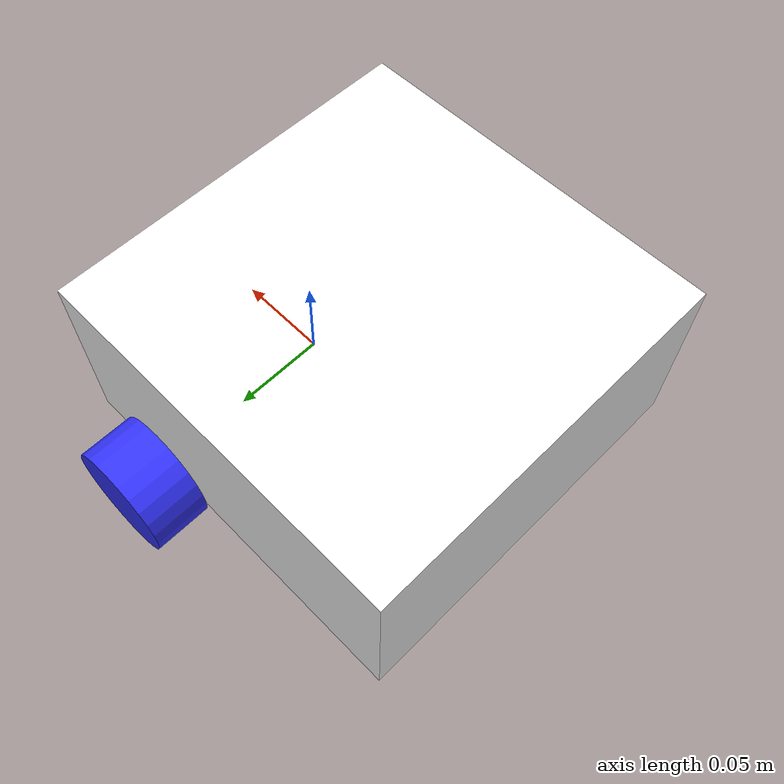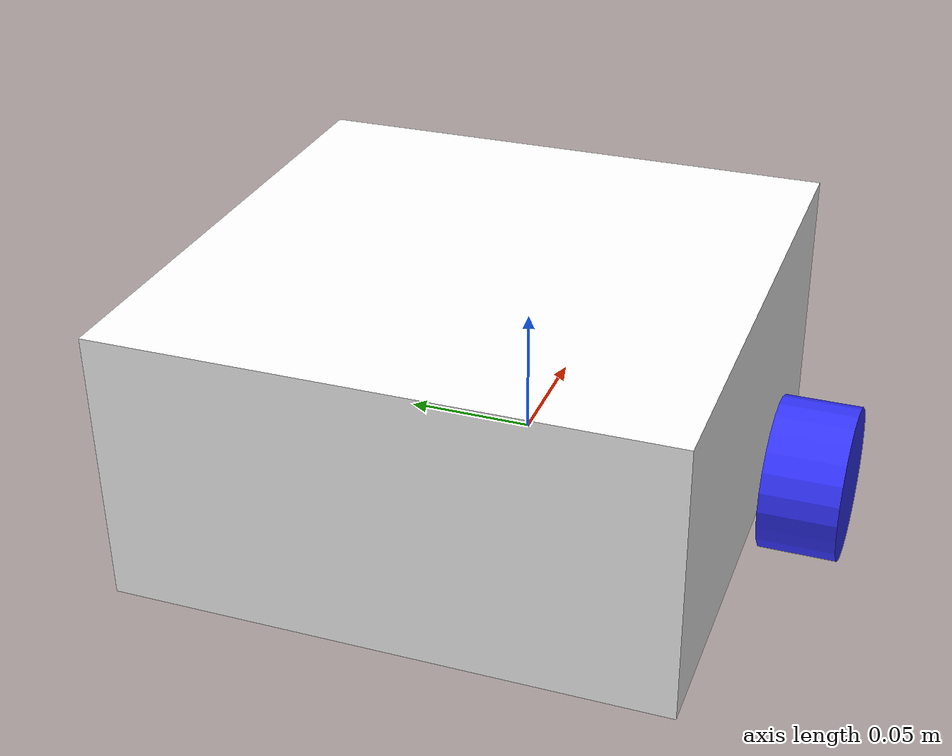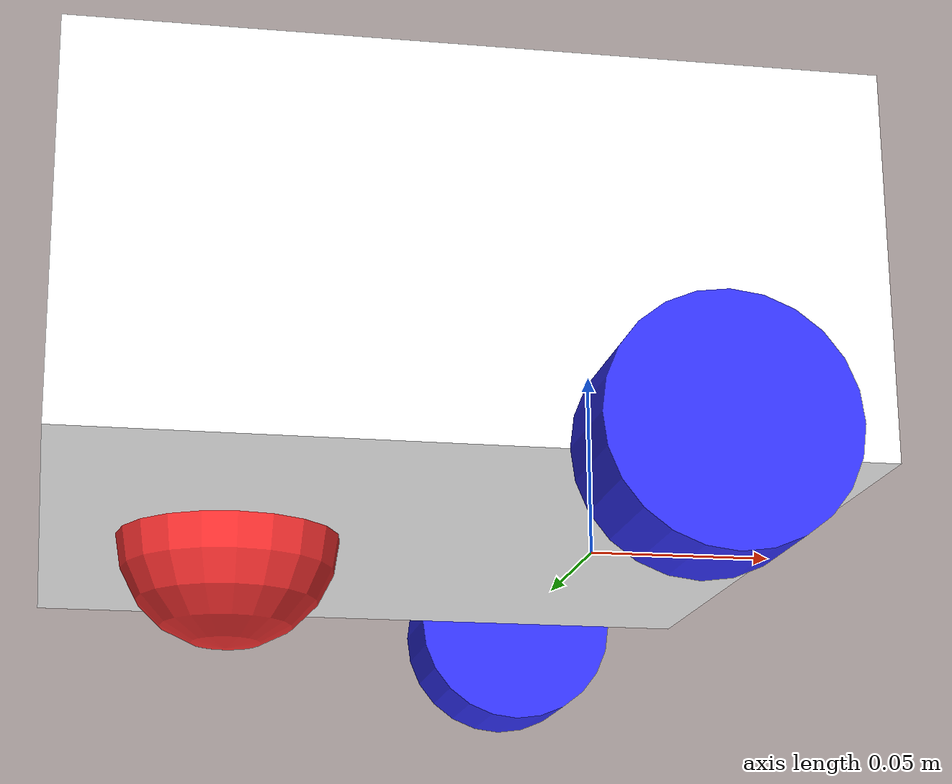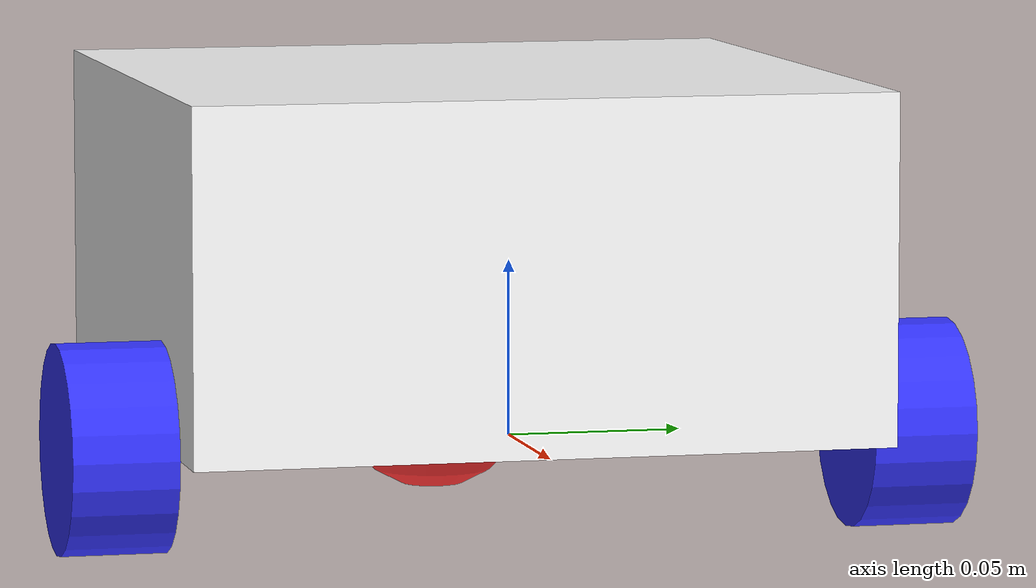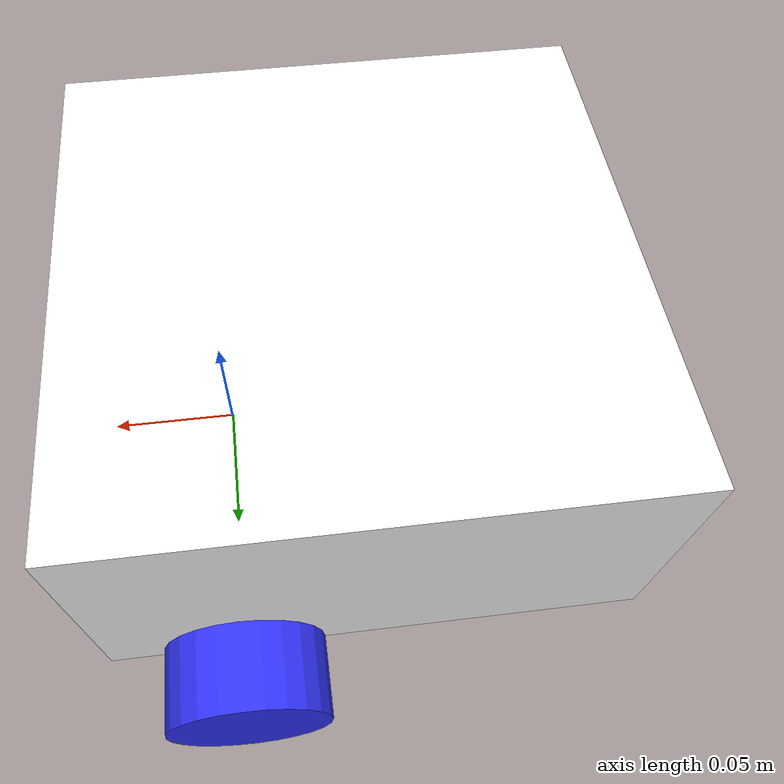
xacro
<?xml version="1.0"?>
<robot xmlns:xacro="http://www.ros.org/wiki/xacro">

  <xacro:include filename="inertial_macros.xacro"/>

  <xacro:property name="chassis_length" value="0.2"/>
  <xacro:property name="chassis_width" value="0.2"/>
  <xacro:property name="chassis_height" value="0.1"/>
  <xacro:property name="wheel_radius" value="0.03"/>
  <xacro:property name="wheel_width" value="0.03"/>
  <xacro:property name="wheel_mass" value="0.1"/>
  <xacro:property name="wheel_offset_x" value="0.15"/>
  <xacro:property name="wheel_offset_y" value="0.115"/>
  <xacro:property name="wheel_offset_z" value="0.01"/>
  <xacro:property name="caster_wheel_radius" value="0.03"/>
  <xacro:property name="caster_wheel_mass" value="0.1"/>
  <xacro:property name="caster_wheel_offset_x" value="0.05"/>

  <material name="white">
    <color rgba="1 1 1 1" />
  </material>

  <material name="black">
    <color rgba="0 0 0 1" />
  </material>

  <material name="blue">
    <color rgba="0.2 0.2 1 1" />
  </material>

  <material name="red">
    <color rgba="1 0.2 0.2 1" />
  </material>

  <!-- BASE LINK -->

  <link name="base_link">

  </link>

  <!-- BASE FOOTPRINT LINK -->

  <joint name="base_footprint_joint" type="fixed">
    <parent link="base_link"/>
    <child link="base_footprint"/>
    <origin xyz="0 0 0" rpy="0 0 0"/>
  </joint>

  <link name="base_footprint">

  </link>

  <!-- CHASSIS LINK -->

  <joint name="chassis_joint" type="fixed">
    <parent link="base_link"/>
    <child link="chassis"/>
    <origin xyz="${-wheel_offset_x} 0 0" />
  </joint>

  <link name="chassis">
    <visual>
      <origin xyz="${chassis_length/2} 0 ${chassis_height/2}"/>
      <geometry>
        <box size="${chassis_length} ${chassis_width} ${chassis_height}"/>
      </geometry>
      <material name="white"/>
    </visual>
    <collision>
      <origin xyz="${chassis_length/2} 0 ${chassis_height/2}"/>
      <geometry>
        <box size="${chassis_length} ${chassis_width} ${chassis_height}"/>
      </geometry>
    </collision>
    <xacro:inertial_box mass="1.0" x="${chassis_length} " y="${chassis_width}" z="${chassis_height}">
      <origin xyz="${chassis_length/2} 0 ${chassis_height/2}" rpy="0 0 0"/>
    </xacro:inertial_box>
  </link>

  <gazebo reference="chassis">
  </gazebo>

  <!-- LEFT WHEEL LINK -->

  <joint name="left_wheel_joint" type="continuous">
    <parent link="base_link"/>
    <child link="left_wheel"/>
    <origin xyz="0 ${wheel_offset_y} 0" rpy="-${pi/2} 0 0"/>
    <axis xyz="0 0 1"/>
    <dynamics damping="0.2" friction="0.1"/>
  </joint>

  <link name="left_wheel">
    <visual>
      <geometry>
        <cylinder radius="${wheel_radius}" length="${wheel_width}"/>
      </geometry>
      <material name="blue"/>
    </visual>
    <collision>
      <geometry>
        <cylinder radius="${wheel_radius}" length="${wheel_width}"/>
      </geometry>
    </collision>
    <xacro:inertial_cylinder mass="${wheel_mass}" length="${wheel_width}" radius="${wheel_radius}">
      <origin xyz="0 0 0" rpy="0 0 0"/>
    </xacro:inertial_cylinder>
  </link>

  <gazebo reference="left_wheel">
    <material>Gazebo/Blue</material>
  </gazebo>

  <!-- RIGHT WHEEL LINK -->

  <joint name="right_wheel_joint" type="continuous">
    <parent link="base_link"/>
    <child link="right_wheel"/>
    <origin xyz="0 ${-wheel_offset_y} 0" rpy="${pi/2} 0 0"/>
    <axis xyz="0 0 -1"/>
    <dynamics damping="0.2" friction="0.1"/>
  </joint>

  <link name="right_wheel">
    <visual>
      <geometry>
        <cylinder radius="${wheel_radius}" length="${wheel_width}"/>
      </geometry>
      <material name="blue"/>
    </visual>
    <collision>
      <geometry>
        <cylinder radius="${wheel_radius}" length="${wheel_width}"/>
      </geometry>
    </collision>
    <xacro:inertial_cylinder mass="${wheel_mass}" length="${wheel_width}" radius="${wheel_radius}">
      <origin xyz="0 0 0" rpy="0 0 0"/>
    </xacro:inertial_cylinder>
  </link>

  <gazebo reference="right_wheel">
    <material>Gazebo/Blue</material>
  </gazebo>

  <!-- CASTER WHEEL LINK -->

  <joint name="caster_wheel_joint" type="fixed">
    <parent link="chassis"/>
    <child link="caster_wheel"/>
    <origin xyz="${caster_wheel_offset_x} 0 0"/>
    <dynamics damping="0.2" friction="0.1"/>
  </joint>

  <link name="caster_wheel">
    <visual>
      <geometry>
        <sphere radius="${caster_wheel_radius}"/>
      </geometry>
      <material name="red"/>
    </visual>
    <collision>
      <geometry>
        <sphere radius="${caster_wheel_radius}"/>
      </geometry>
    </collision>
    <xacro:inertial_sphere mass="${caster_wheel_mass}" radius="${caster_wheel_radius}">
      <origin xyz="0 0 0" rpy="0 0 0"/>
    </xacro:inertial_sphere>
  </link>

  <gazebo reference="caster_wheel">
    <material>Gazebo/Red</material>
    <mu1 value="0.1" />
    <mu2 value="0.1" />
  </gazebo>

</robot>
